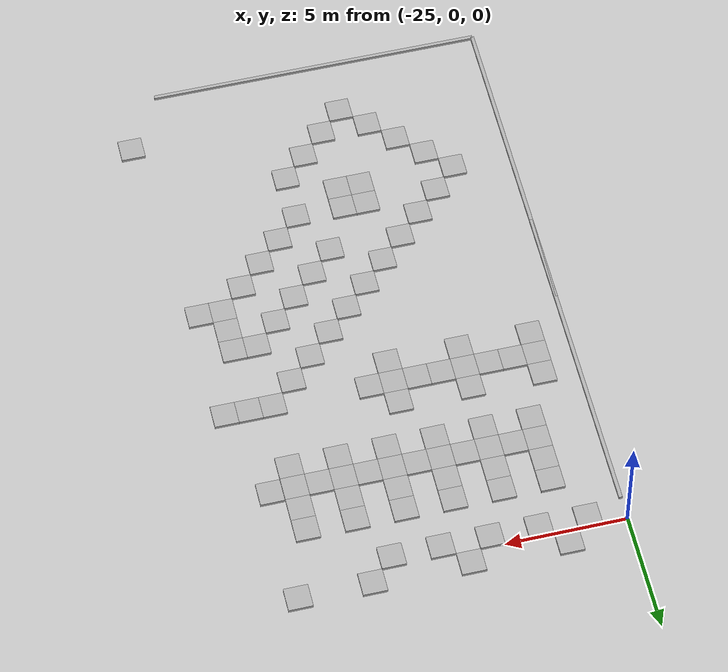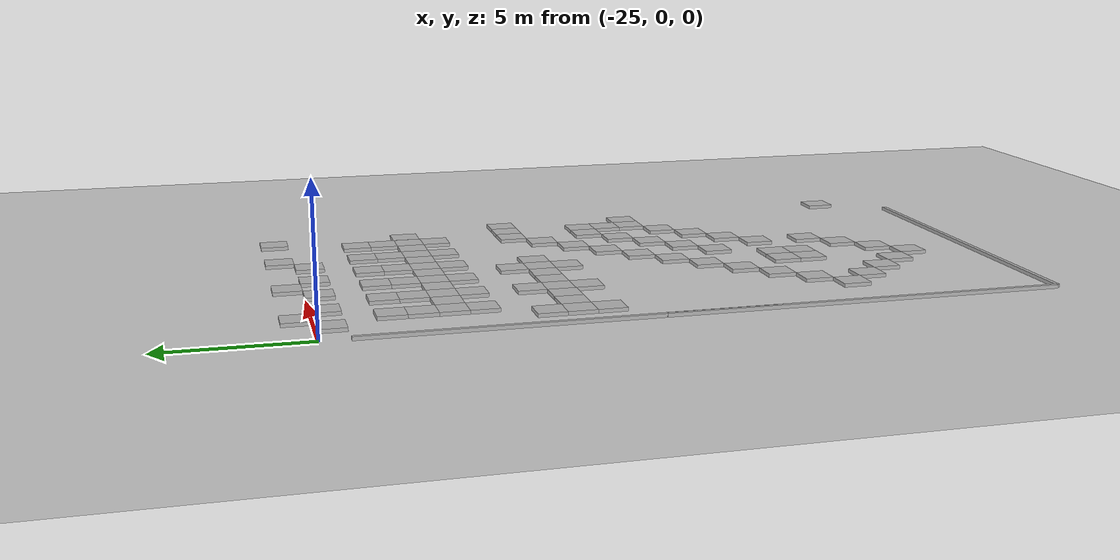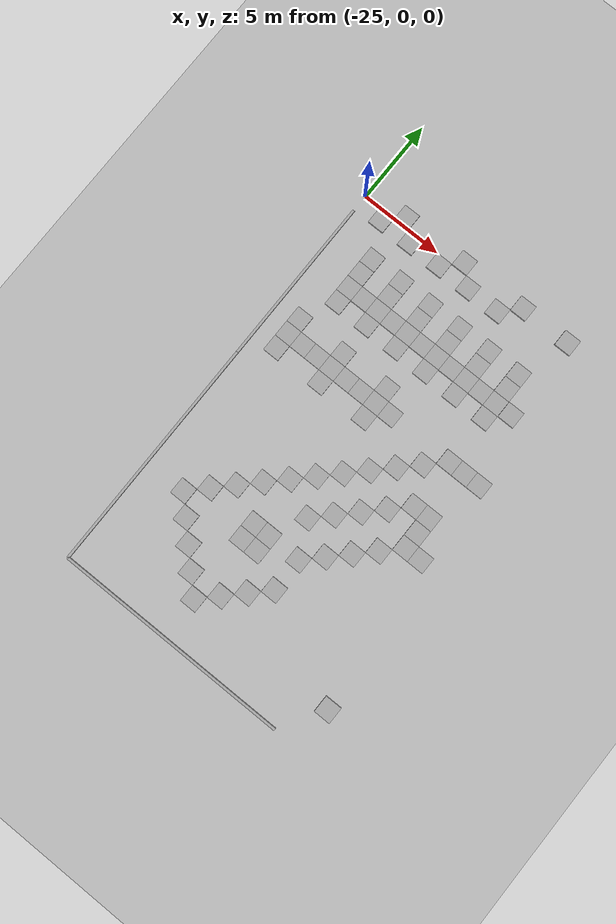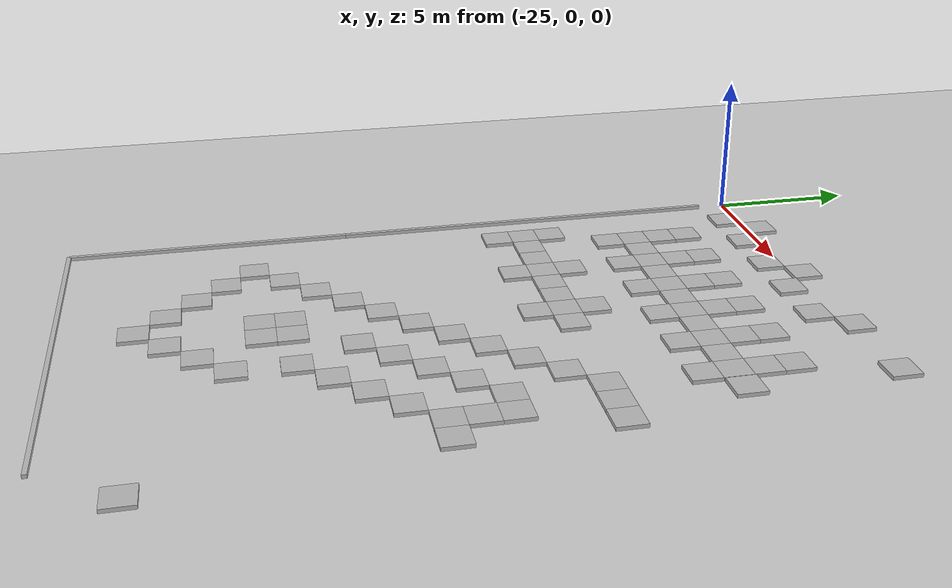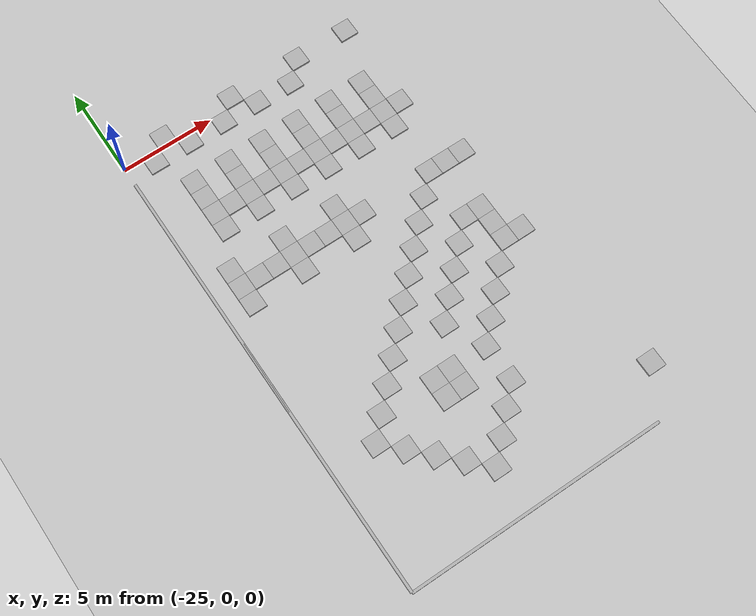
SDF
<sdf version="1.7">
 <world name="default">
  <model name="ground_plane">
   <static>1</static>
   <link name="link">
    <collision name="collision">
     <geometry><plane><normal>0 0 1</normal><size>100 100</size></plane></geometry>
     <surface>
      <contact><collide_bitmask>65535</collide_bitmask></contact>
      <friction><ode><mu>100</mu><mu2>50</mu2></ode></friction>
     </surface>
    </collision>
    <visual name="visual">
     <cast_shadows>0</cast_shadows>
     <geometry><plane><normal>0 0 1</normal><size>100 100</size></plane></geometry>
     <material>
      <script><uri>file://media/materials/scripts/gazebo.material</uri><name>Gazebo/Grey</name></script>
     </material>
    </visual>
   </link>
  </model>
  <model name="concrete_cube_1m_109">
   <static>1</static>
   <link name="link">
    <collision name="concrete_cube_1m">
     <pose>-0 0 0.3 0 -0 0</pose>
     <geometry><box><size>1 1 0.6</size></box></geometry>
    </collision>
    <visual name="concrete_cube_1m_visual">
     <geometry><mesh><uri>model://concrete_cube_1m/meshes/concrete_cube_1m.dae</uri></mesh></geometry>
    </visual>
   </link>
   <pose>-13.5 -12.5 0 0 -0 0</pose>
  </model>
  <model name="concrete_cube_1m_110">
   <static>1</static>
   <link name="link">
    <collision name="concrete_cube_1m">
     <pose>-0 0 0.3 0 -0 0</pose>
     <geometry><box><size>1 1 0.6</size></box></geometry>
    </collision>
    <visual name="concrete_cube_1m_visual">
     <geometry><mesh><uri>model://concrete_cube_1m/meshes/concrete_cube_1m.dae</uri></mesh></geometry>
    </visual>
   </link>
   <pose>-14.5 0.5 0 0 -0 0</pose>
  </model>
  <model name="concrete_cube_1m_186">
   <static>1</static>
   <link name="link">
    <collision name="concrete_cube_1m">
     <pose>-0 0 0.3 0 -0 0</pose>
     <geometry><box><size>1 1 0.6</size></box></geometry>
    </collision>
    <visual name="concrete_cube_1m_visual">
     <geometry><mesh><uri>model://concrete_cube_1m/meshes/concrete_cube_1m.dae</uri></mesh></geometry>
    </visual>
   </link>
   <pose>-10.5 -8.5 0 0 -0 0</pose>
  </model>
  <model name="concrete_cube_1m_187">
   <static>1</static>
   <link name="link">
    <collision name="concrete_cube_1m">
     <pose>-0 0 0.3 0 -0 0</pose>
     <geometry><box><size>1 1 0.6</size></box></geometry>
    </collision>
    <visual name="concrete_cube_1m_visual">
     <geometry><mesh><uri>model://concrete_cube_1m/meshes/concrete_cube_1m.dae</uri></mesh></geometry>
    </visual>
   </link>
   <pose>-11.5 -8.5 0 0 -0 0</pose>
  </model>
  <model name="concrete_cube_1m_188">
   <static>1</static>
   <link name="link">
    <collision name="concrete_cube_1m">
     <pose>-0 0 0.3 0 -0 0</pose>
     <geometry><box><size>1 1 0.6</size></box></geometry>
    </collision>
    <visual name="concrete_cube_1m_visual">
     <geometry><mesh><uri>model://concrete_cube_1m/meshes/concrete_cube_1m.dae</uri></mesh></geometry>
    </visual>
   </link>
   <pose>-12.5 -8.5 0 0 -0 0</pose>
  </model>
  <model name="concrete_cube_1m_189">
   <static>1</static>
   <link name="link">
    <collision name="concrete_cube_1m">
     <pose>-0 0 0.3 0 -0 0</pose>
     <geometry><box><size>1 1 0.6</size></box></geometry>
    </collision>
    <visual name="concrete_cube_1m_visual">
     <geometry><mesh><uri>model://concrete_cube_1m/meshes/concrete_cube_1m.dae</uri></mesh></geometry>
    </visual>
   </link>
   <pose>-12.5 -5.5 0 0 -0 0</pose>
  </model>
  <model name="concrete_cube_1m_190">
   <static>1</static>
   <link name="link">
    <collision name="concrete_cube_1m">
     <pose>-0 0 0.3 0 -0 0</pose>
     <geometry><box><size>1 1 0.6</size></box></geometry>
    </collision>
    <visual name="concrete_cube_1m_visual">
     <geometry><mesh><uri>model://concrete_cube_1m/meshes/concrete_cube_1m.dae</uri></mesh></geometry>
    </visual>
   </link>
   <pose>-12.5 -4.5 0 0 -0 0</pose>
  </model>
  <model name="concrete_cube_1m_191">
   <static>1</static>
   <link name="link">
    <collision name="concrete_cube_1m">
     <pose>-0 0 0.3 0 -0 0</pose>
     <geometry><box><size>1 1 0.6</size></box></geometry>
    </collision>
    <visual name="concrete_cube_1m_visual">
     <geometry><mesh><uri>model://concrete_cube_1m/meshes/concrete_cube_1m.dae</uri></mesh></geometry>
    </visual>
   </link>
   <pose>-12.5 -3.5 0 0 -0 0</pose>
  </model>
  <model name="concrete_cube_1m_195">
   <static>1</static>
   <link name="link">
    <collision name="concrete_cube_1m">
     <pose>-0 0 0.3 0 -0 0</pose>
     <geometry><box><size>1 1 0.6</size></box></geometry>
    </collision>
    <visual name="concrete_cube_1m_visual">
     <geometry><mesh><uri>model://concrete_cube_1m/meshes/concrete_cube_1m.dae</uri></mesh></geometry>
    </visual>
   </link>
   <pose>-10.5 -13.5 0 0 -0 0</pose>
  </model>
  <model name="concrete_cube_1m_203">
   <static>1</static>
   <link name="link">
    <collision name="concrete_cube_1m">
     <pose>-0 0 0.3 0 -0 0</pose>
     <geometry><box><size>1 1 0.6</size></box></geometry>
    </collision>
    <visual name="concrete_cube_1m_visual">
     <geometry><mesh><uri>model://concrete_cube_1m/meshes/concrete_cube_1m.dae</uri></mesh></geometry>
    </visual>
   </link>
   <pose>-11.5 -13.5 0 0 -0 0</pose>
  </model>
  <model name="concrete_cube_1m_204">
   <static>1</static>
   <link name="link">
    <collision name="concrete_cube_1m">
     <pose>-0 0 0.3 0 -0 0</pose>
     <geometry><box><size>1 1 0.6</size></box></geometry>
    </collision>
    <visual name="concrete_cube_1m_visual">
     <geometry><mesh><uri>model://concrete_cube_1m/meshes/concrete_cube_1m.dae</uri></mesh></geometry>
    </visual>
   </link>
   <pose>-11.5 -12.5 0 0 -0 0</pose>
  </model>
  <model name="concrete_cube_1m_205">
   <static>1</static>
   <link name="link">
    <collision name="concrete_cube_1m">
     <pose>-0 0 0.3 0 -0 0</pose>
     <geometry><box><size>1 1 0.6</size></box></geometry>
    </collision>
    <visual name="concrete_cube_1m_visual">
     <geometry><mesh><uri>model://concrete_cube_1m/meshes/concrete_cube_1m.dae</uri></mesh></geometry>
    </visual>
   </link>
   <pose>-11.5 -11.5 0 0 -0 0</pose>
  </model>
  <model name="concrete_cube_1m_206">
   <static>1</static>
   <link name="link">
    <collision name="concrete_cube_1m">
     <pose>-0 0 0.3 0 -0 0</pose>
     <geometry><box><size>1 1 0.6</size></box></geometry>
    </collision>
    <visual name="concrete_cube_1m_visual">
     <geometry><mesh><uri>model://concrete_cube_1m/meshes/concrete_cube_1m.dae</uri></mesh></geometry>
    </visual>
   </link>
   <pose>-12.5 -11.5 0 0 -0 0</pose>
  </model>
  <model name="concrete_cube_1m_208">
   <static>1</static>
   <link name="link">
    <collision name="concrete_cube_1m">
     <pose>-0 0 0.3 0 -0 0</pose>
     <geometry><box><size>1 1 0.6</size></box></geometry>
    </collision>
    <visual name="concrete_cube_1m_visual">
     <geometry><mesh><uri>model://concrete_cube_1m/meshes/concrete_cube_1m.dae</uri></mesh></geometry>
    </visual>
   </link>
   <pose>-11.4847 -4.47764 0 0 -0 0</pose>
  </model>
  <model name="concrete_cube_1m_209">
   <static>1</static>
   <link name="link">
    <collision name="concrete_cube_1m">
     <pose>-0 0 0.3 0 -0 0</pose>
     <geometry><box><size>1 1 0.6</size></box></geometry>
    </collision>
    <visual name="concrete_cube_1m_visual">
     <geometry><mesh><uri>model://concrete_cube_1m/meshes/concrete_cube_1m.dae</uri></mesh></geometry>
    </visual>
   </link>
   <pose>-13.5 -4.5 0 0 -0 0</pose>
  </model>
  <model name="concrete_cube_1m_210">
   <static>1</static>
   <link name="link">
    <collision name="concrete_cube_1m">
     <pose>-0 0 0.3 0 -0 0</pose>
     <geometry><box><size>1 1 0.6</size></box></geometry>
    </collision>
    <visual name="concrete_cube_1m_visual">
     <geometry><mesh><uri>model://concrete_cube_1m/meshes/concrete_cube_1m.dae</uri></mesh></geometry>
    </visual>
   </link>
   <pose>-11.5 0.5 0 0 -0 0</pose>
  </model>
  <model name="concrete_barrier_14m_9">
   <static>1</static>
   <link name="link">
    <collision name="concrete_barrier_14m_01">
     <pose>-0 0 0.3 0 -0 0</pose>
     <geometry><box><size>14 0.15 0.6</size></box></geometry>
    </collision>
    <visual name="concrete_barrier_14m_visual">
     <geometry><mesh><uri>model://concrete_barrier_14m/meshes/concrete_barrier_14m.dae</uri></mesh></geometry>
    </visual>
   </link>
   <pose>-25 -8 0 0 -0 0</pose>
  </model>
  <model name="concrete_cube_1m_345">
   <static>1</static>
   <link name="link">
    <collision name="concrete_cube_1m">
     <pose>-0 0 0.3 0 -0 0</pose>
     <geometry><box><size>1 1 0.6</size></box></geometry>
    </collision>
    <visual name="concrete_cube_1m_visual">
     <geometry><mesh><uri>model://concrete_cube_1m/meshes/concrete_cube_1m.dae</uri></mesh></geometry>
    </visual>
   </link>
   <pose>-18.5 0.5 0 0 -0 0</pose>
  </model>
  <model name="concrete_cube_1m_349">
   <static>1</static>
   <link name="link">
    <collision name="concrete_cube_1m">
     <pose>-0 0 0.3 0 -0 0</pose>
     <geometry><box><size>1 1 0.6</size></box></geometry>
    </collision>
    <visual name="concrete_cube_1m_visual">
     <geometry><mesh><uri>model://concrete_cube_1m/meshes/concrete_cube_1m.dae</uri></mesh></geometry>
    </visual>
   </link>
   <pose>-14.5 -4.5 0 0 -0 0</pose>
  </model>
  <model name="concrete_cube_1m_350">
   <static>1</static>
   <link name="link">
    <collision name="concrete_cube_1m">
     <pose>-0 0 0.3 0 -0 0</pose>
     <geometry><box><size>1 1 0.6</size></box></geometry>
    </collision>
    <visual name="concrete_cube_1m_visual">
     <geometry><mesh><uri>model://concrete_cube_1m/meshes/concrete_cube_1m.dae</uri></mesh></geometry>
    </visual>
   </link>
   <pose>-14.5 -3.5 0 0 -0 0</pose>
  </model>
  <model name="concrete_cube_1m_351">
   <static>1</static>
   <link name="link">
    <collision name="concrete_cube_1m">
     <pose>-0 0 0.3 0 -0 0</pose>
     <geometry><box><size>1 1 0.6</size></box></geometry>
    </collision>
    <visual name="concrete_cube_1m_visual">
     <geometry><mesh><uri>model://concrete_cube_1m/meshes/concrete_cube_1m.dae</uri></mesh></geometry>
    </visual>
   </link>
   <pose>-14.5 -5.5 0 0 -0 0</pose>
  </model>
  <model name="concrete_cube_1m_352">
   <static>1</static>
   <link name="link">
    <collision name="concrete_cube_1m">
     <pose>-0 0 0.3 0 -0 0</pose>
     <geometry><box><size>1 1 0.6</size></box></geometry>
    </collision>
    <visual name="concrete_cube_1m_visual">
     <geometry><mesh><uri>model://concrete_cube_1m/meshes/concrete_cube_1m.dae</uri></mesh></geometry>
    </visual>
   </link>
   <pose>-15.5 -4.5 0 0 -0 0</pose>
  </model>
  <model name="concrete_cube_1m_353">
   <static>1</static>
   <link name="link">
    <collision name="concrete_cube_1m">
     <pose>-0 0 0.3 0 -0 0</pose>
     <geometry><box><size>1 1 0.6</size></box></geometry>
    </collision>
    <visual name="concrete_cube_1m_visual">
     <geometry><mesh><uri>model://concrete_cube_1m/meshes/concrete_cube_1m.dae</uri></mesh></geometry>
    </visual>
   </link>
   <pose>-16.5 -4.5 0 0 -0 0</pose>
  </model>
  <model name="concrete_cube_1m_354">
   <static>1</static>
   <link name="link">
    <collision name="concrete_cube_1m">
     <pose>-0 0 0.3 0 -0 0</pose>
     <geometry><box><size>1 1 0.6</size></box></geometry>
    </collision>
    <visual name="concrete_cube_1m_visual">
     <geometry><mesh><uri>model://concrete_cube_1m/meshes/concrete_cube_1m.dae</uri></mesh></geometry>
    </visual>
   </link>
   <pose>-16.5 -3.5 0 0 -0 0</pose>
  </model>
  <model name="concrete_cube_1m_355">
   <static>1</static>
   <link name="link">
    <collision name="concrete_cube_1m">
     <pose>-0 0 0.3 0 -0 0</pose>
     <geometry><box><size>1 1 0.6</size></box></geometry>
    </collision>
    <visual name="concrete_cube_1m_visual">
     <geometry><mesh><uri>model://concrete_cube_1m/meshes/concrete_cube_1m.dae</uri></mesh></geometry>
    </visual>
   </link>
   <pose>-16.5 -5.5 0 0 -0 0</pose>
  </model>
  <model name="concrete_cube_1m_356">
   <static>1</static>
   <link name="link">
    <collision name="concrete_cube_1m">
     <pose>-0 0 0.3 0 -0 0</pose>
     <geometry><box><size>1 1 0.6</size></box></geometry>
    </collision>
    <visual name="concrete_cube_1m_visual">
     <geometry><mesh><uri>model://concrete_cube_1m/meshes/concrete_cube_1m.dae</uri></mesh></geometry>
    </visual>
   </link>
   <pose>-17.5 -4.5 0 0 -0 0</pose>
  </model>
  <model name="concrete_cube_1m_357">
   <static>1</static>
   <link name="link">
    <collision name="concrete_cube_1m">
     <pose>-0 0 0.3 0 -0 0</pose>
     <geometry><box><size>1 1 0.6</size></box></geometry>
    </collision>
    <visual name="concrete_cube_1m_visual">
     <geometry><mesh><uri>model://concrete_cube_1m/meshes/concrete_cube_1m.dae</uri></mesh></geometry>
    </visual>
   </link>
   <pose>-18.5 -4.5 0 0 -0 0</pose>
  </model>
  <model name="concrete_cube_1m_358">
   <static>1</static>
   <link name="link">
    <collision name="concrete_cube_1m">
     <pose>-0 0 0.3 0 -0 0</pose>
     <geometry><box><size>1 1 0.6</size></box></geometry>
    </collision>
    <visual name="concrete_cube_1m_visual">
     <geometry><mesh><uri>model://concrete_cube_1m/meshes/concrete_cube_1m.dae</uri></mesh></geometry>
    </visual>
   </link>
   <pose>-18.5 -3.5 0 0 -0 0</pose>
  </model>
  <model name="concrete_cube_1m_359">
   <static>1</static>
   <link name="link">
    <collision name="concrete_cube_1m">
     <pose>-0 0 0.3 0 -0 0</pose>
     <geometry><box><size>1 1 0.6</size></box></geometry>
    </collision>
    <visual name="concrete_cube_1m_visual">
     <geometry><mesh><uri>model://concrete_cube_1m/meshes/concrete_cube_1m.dae</uri></mesh></geometry>
    </visual>
   </link>
   <pose>-18.5 -5.5 0 0 -0 0</pose>
  </model>
  <model name="concrete_cube_1m_360">
   <static>1</static>
   <link name="link">
    <collision name="concrete_cube_1m">
     <pose>-0 0 0.3 0 -0 0</pose>
     <geometry><box><size>1 1 0.6</size></box></geometry>
    </collision>
    <visual name="concrete_cube_1m_visual">
     <geometry><mesh><uri>model://concrete_cube_1m/meshes/concrete_cube_1m.dae</uri></mesh></geometry>
    </visual>
   </link>
   <pose>-13.5 -9.5 0 0 -0 0</pose>
  </model>
  <model name="concrete_cube_1m_361">
   <static>1</static>
   <link name="link">
    <collision name="concrete_cube_1m">
     <pose>-0 0 0.3 0 -0 0</pose>
     <geometry><box><size>1 1 0.6</size></box></geometry>
    </collision>
    <visual name="concrete_cube_1m_visual">
     <geometry><mesh><uri>model://concrete_cube_1m/meshes/concrete_cube_1m.dae</uri></mesh></geometry>
    </visual>
   </link>
   <pose>-14.5 -10.5 0 0 -0 0</pose>
  </model>
  <model name="concrete_cube_1m_362">
   <static>1</static>
   <link name="link">
    <collision name="concrete_cube_1m">
     <pose>-0 0 0.3 0 -0 0</pose>
     <geometry><box><size>1 1 0.6</size></box></geometry>
    </collision>
    <visual name="concrete_cube_1m_visual">
     <geometry><mesh><uri>model://concrete_cube_1m/meshes/concrete_cube_1m.dae</uri></mesh></geometry>
    </visual>
   </link>
   <pose>-15.5 -11.5 0 0 -0 0</pose>
  </model>
  <model name="concrete_cube_1m_363">
   <static>1</static>
   <link name="link">
    <collision name="concrete_cube_1m">
     <pose>-0 0 0.3 0 -0 0</pose>
     <geometry><box><size>1 1 0.6</size></box></geometry>
    </collision>
    <visual name="concrete_cube_1m_visual">
     <geometry><mesh><uri>model://concrete_cube_1m/meshes/concrete_cube_1m.dae</uri></mesh></geometry>
    </visual>
   </link>
   <pose>-16.5 -12.5 0 0 -0 0</pose>
  </model>
  <model name="concrete_cube_1m_364">
   <static>1</static>
   <link name="link">
    <collision name="concrete_cube_1m">
     <pose>-0 0 0.3 0 -0 0</pose>
     <geometry><box><size>1 1 0.6</size></box></geometry>
    </collision>
    <visual name="concrete_cube_1m_visual">
     <geometry><mesh><uri>model://concrete_cube_1m/meshes/concrete_cube_1m.dae</uri></mesh></geometry>
    </visual>
   </link>
   <pose>-17.5 -13.5 0 0 -0 0</pose>
  </model>
  <model name="concrete_cube_1m_365">
   <static>1</static>
   <link name="link">
    <collision name="concrete_cube_1m">
     <pose>-0 0 0.3 0 -0 0</pose>
     <geometry><box><size>1 1 0.6</size></box></geometry>
    </collision>
    <visual name="concrete_cube_1m_visual">
     <geometry><mesh><uri>model://concrete_cube_1m/meshes/concrete_cube_1m.dae</uri></mesh></geometry>
    </visual>
   </link>
   <pose>-18.5 -8.5 0 0 -0 0</pose>
  </model>
  <model name="concrete_cube_1m_366">
   <static>1</static>
   <link name="link">
    <collision name="concrete_cube_1m">
     <pose>-0 0 0.3 0 -0 0</pose>
     <geometry><box><size>1 1 0.6</size></box></geometry>
    </collision>
    <visual name="concrete_cube_1m_visual">
     <geometry><mesh><uri>model://concrete_cube_1m/meshes/concrete_cube_1m.dae</uri></mesh></geometry>
    </visual>
   </link>
   <pose>-17.5 -8.5 0 0 -0 0</pose>
  </model>
  <model name="concrete_cube_1m_367">
   <static>1</static>
   <link name="link">
    <collision name="concrete_cube_1m">
     <pose>-0 0 0.3 0 -0 0</pose>
     <geometry><box><size>1 1 0.6</size></box></geometry>
    </collision>
    <visual name="concrete_cube_1m_visual">
     <geometry><mesh><uri>model://concrete_cube_1m/meshes/concrete_cube_1m.dae</uri></mesh></geometry>
    </visual>
   </link>
   <pose>-17.5 -7.5 0 0 -0 0</pose>
  </model>
  <model name="concrete_cube_1m_368">
   <static>1</static>
   <link name="link">
    <collision name="concrete_cube_1m">
     <pose>-0 0 0.3 0 -0 0</pose>
     <geometry><box><size>1 1 0.6</size></box></geometry>
    </collision>
    <visual name="concrete_cube_1m_visual">
     <geometry><mesh><uri>model://concrete_cube_1m/meshes/concrete_cube_1m.dae</uri></mesh></geometry>
    </visual>
   </link>
   <pose>-16.5 -8.5 0 0 -0 0</pose>
  </model>
  <model name="concrete_cube_1m_369">
   <static>1</static>
   <link name="link">
    <collision name="concrete_cube_1m">
     <pose>-0 0 0.3 0 -0 0</pose>
     <geometry><box><size>1 1 0.6</size></box></geometry>
    </collision>
    <visual name="concrete_cube_1m_visual">
     <geometry><mesh><uri>model://concrete_cube_1m/meshes/concrete_cube_1m.dae</uri></mesh></geometry>
    </visual>
   </link>
   <pose>-17.5 -9.5 0 0 -0 0</pose>
  </model>
  <model name="concrete_cube_1m_370">
   <static>1</static>
   <link name="link">
    <collision name="concrete_cube_1m">
     <pose>-0 0 0.3 0 -0 0</pose>
     <geometry><box><size>1 1 0.6</size></box></geometry>
    </collision>
    <visual name="concrete_cube_1m_visual">
     <geometry><mesh><uri>model://concrete_cube_1m/meshes/concrete_cube_1m.dae</uri></mesh></geometry>
    </visual>
   </link>
   <pose>-14.5 -13.5 0 0 -0 0</pose>
  </model>
  <model name="concrete_cube_1m_371">
   <static>1</static>
   <link name="link">
    <collision name="concrete_cube_1m">
     <pose>-0 0 0.3 0 -0 0</pose>
     <geometry><box><size>1 1 0.6</size></box></geometry>
    </collision>
    <visual name="concrete_cube_1m_visual">
     <geometry><mesh><uri>model://concrete_cube_1m/meshes/concrete_cube_1m.dae</uri></mesh></geometry>
    </visual>
   </link>
   <pose>-15.5 -14.5 0 0 -0 0</pose>
  </model>
  <model name="concrete_cube_1m_372">
   <static>1</static>
   <link name="link">
    <collision name="concrete_cube_1m">
     <pose>-0 0 0.3 0 -0 0</pose>
     <geometry><box><size>1 1 0.6</size></box></geometry>
    </collision>
    <visual name="concrete_cube_1m_visual">
     <geometry><mesh><uri>model://concrete_cube_1m/meshes/concrete_cube_1m.dae</uri></mesh></geometry>
    </visual>
   </link>
   <pose>-16.5 -15.5 0 0 -0 0</pose>
  </model>
  <model name="concrete_cube_1m_374">
   <static>1</static>
   <link name="link">
    <collision name="concrete_cube_1m">
     <pose>-0 0 0.3 0 -0 0</pose>
     <geometry><box><size>1 1 0.6</size></box></geometry>
    </collision>
    <visual name="concrete_cube_1m_visual">
     <geometry><mesh><uri>model://concrete_cube_1m/meshes/concrete_cube_1m.dae</uri></mesh></geometry>
    </visual>
   </link>
   <pose>-15.5 -0.5 0 0 -0 0</pose>
  </model>
  <model name="concrete_cube_1m_375">
   <static>1</static>
   <link name="link">
    <collision name="concrete_cube_1m">
     <pose>-0 0 0.3 0 -0 0</pose>
     <geometry><box><size>1 1 0.6</size></box></geometry>
    </collision>
    <visual name="concrete_cube_1m_visual">
     <geometry><mesh><uri>model://concrete_cube_1m/meshes/concrete_cube_1m.dae</uri></mesh></geometry>
    </visual>
   </link>
   <pose>-17.5 -0.5 0 0 -0 0</pose>
  </model>
  <model name="concrete_cube_1m_380">
   <static>1</static>
   <link name="link">
    <collision name="concrete_cube_1m">
     <pose>-0 0 0.3 0 -0 0</pose>
     <geometry><box><size>1 1 0.6</size></box></geometry>
    </collision>
    <visual name="concrete_cube_1m_visual">
     <geometry><mesh><uri>model://concrete_cube_1m/meshes/concrete_cube_1m.dae</uri></mesh></geometry>
    </visual>
   </link>
   <pose>-12.5 -2.5 0 0 -0 0</pose>
  </model>
  <model name="concrete_cube_1m_381">
   <static>1</static>
   <link name="link">
    <collision name="concrete_cube_1m">
     <pose>-0 0 0.3 0 -0 0</pose>
     <geometry><box><size>1 1 0.6</size></box></geometry>
    </collision>
    <visual name="concrete_cube_1m_visual">
     <geometry><mesh><uri>model://concrete_cube_1m/meshes/concrete_cube_1m.dae</uri></mesh></geometry>
    </visual>
   </link>
   <pose>-14.5 -2.5 0 0 -0 0</pose>
  </model>
  <model name="concrete_cube_1m_382">
   <static>1</static>
   <link name="link">
    <collision name="concrete_cube_1m">
     <pose>-0 0 0.3 0 -0 0</pose>
     <geometry><box><size>1 1 0.6</size></box></geometry>
    </collision>
    <visual name="concrete_cube_1m_visual">
     <geometry><mesh><uri>model://concrete_cube_1m/meshes/concrete_cube_1m.dae</uri></mesh></geometry>
    </visual>
   </link>
   <pose>-16.5 -2.5 0 0 -0 0</pose>
  </model>
  <model name="concrete_cube_1m_383">
   <static>1</static>
   <link name="link">
    <collision name="concrete_cube_1m">
     <pose>-0 0 0.3 0 -0 0</pose>
     <geometry><box><size>1 1 0.6</size></box></geometry>
    </collision>
    <visual name="concrete_cube_1m_visual">
     <geometry><mesh><uri>model://concrete_cube_1m/meshes/concrete_cube_1m.dae</uri></mesh></geometry>
    </visual>
   </link>
   <pose>-18.5 -2.5 0 0 -0 0</pose>
  </model>
  <model name="concrete_cube_1m_384">
   <static>1</static>
   <link name="link">
    <collision name="concrete_cube_1m">
     <pose>-0 0 0.3 0 -0 0</pose>
     <geometry><box><size>1 1 0.6</size></box></geometry>
    </collision>
    <visual name="concrete_cube_1m_visual">
     <geometry><mesh><uri>model://concrete_cube_1m/meshes/concrete_cube_1m.dae</uri></mesh></geometry>
    </visual>
   </link>
   <pose>-12.5 -14.5 0 0 -0 0</pose>
  </model>
  <model name="concrete_cube_1m_385">
   <static>1</static>
   <link name="link">
    <collision name="concrete_cube_1m">
     <pose>-0 0 0.3 0 -0 0</pose>
     <geometry><box><size>1 1 0.6</size></box></geometry>
    </collision>
    <visual name="concrete_cube_1m_visual">
     <geometry><mesh><uri>model://concrete_cube_1m/meshes/concrete_cube_1m.dae</uri></mesh></geometry>
    </visual>
   </link>
   <pose>-13.5 -15.5 0 0 -0 0</pose>
  </model>
  <model name="concrete_cube_1m_386">
   <static>1</static>
   <link name="link">
    <collision name="concrete_cube_1m">
     <pose>-0 0 0.3 0 -0 0</pose>
     <geometry><box><size>1 1 0.6</size></box></geometry>
    </collision>
    <visual name="concrete_cube_1m_visual">
     <geometry><mesh><uri>model://concrete_cube_1m/meshes/concrete_cube_1m.dae</uri></mesh></geometry>
    </visual>
   </link>
   <pose>-14.5 -16.5 0 0 -0 0</pose>
  </model>
  <model name="concrete_cube_1m_387">
   <static>1</static>
   <link name="link">
    <collision name="concrete_cube_1m">
     <pose>-0 0 0.3 0 -0 0</pose>
     <geometry><box><size>1 1 0.6</size></box></geometry>
    </collision>
    <visual name="concrete_cube_1m_visual">
     <geometry><mesh><uri>model://concrete_cube_1m/meshes/concrete_cube_1m.dae</uri></mesh></geometry>
    </visual>
   </link>
   <pose>-15.5 -17.5 0 0 -0 0</pose>
  </model>
  <model name="concrete_cube_1m_373">
   <static>1</static>
   <link name="link">
    <collision name="concrete_cube_1m">
     <pose>-0 0 0.3 0 -0 0</pose>
     <geometry><box><size>1 1 0.6</size></box></geometry>
    </collision>
    <visual name="concrete_cube_1m_visual">
     <geometry><mesh><uri>model://concrete_cube_1m/meshes/concrete_cube_1m.dae</uri></mesh></geometry>
    </visual>
   </link>
   <pose>-17.5 -18.5 0 0 -0 0</pose>
  </model>
  <model name="concrete_cube_1m_388">
   <static>1</static>
   <link name="link">
    <collision name="concrete_cube_1m">
     <pose>-0 0 0.3 0 -0 0</pose>
     <geometry><box><size>1 1 0.6</size></box></geometry>
    </collision>
    <visual name="concrete_cube_1m_visual">
     <geometry><mesh><uri>model://concrete_cube_1m/meshes/concrete_cube_1m.dae</uri></mesh></geometry>
    </visual>
   </link>
   <pose>-17.5 -17.5 0 0 -0 0</pose>
  </model>
  <model name="concrete_cube_1m_389">
   <static>1</static>
   <link name="link">
    <collision name="concrete_cube_1m">
     <pose>-0 0 0.3 0 -0 0</pose>
     <geometry><box><size>1 1 0.6</size></box></geometry>
    </collision>
    <visual name="concrete_cube_1m_visual">
     <geometry><mesh><uri>model://concrete_cube_1m/meshes/concrete_cube_1m.dae</uri></mesh></geometry>
    </visual>
   </link>
   <pose>-18.5 -18.5 0 0 -0 0</pose>
  </model>
  <model name="concrete_cube_1m_390">
   <static>1</static>
   <link name="link">
    <collision name="concrete_cube_1m">
     <pose>-0 0 0.3 0 -0 0</pose>
     <geometry><box><size>1 1 0.6</size></box></geometry>
    </collision>
    <visual name="concrete_cube_1m_visual">
     <geometry><mesh><uri>model://concrete_cube_1m/meshes/concrete_cube_1m.dae</uri></mesh></geometry>
    </visual>
   </link>
   <pose>-18.5 -17.5 0 0 -0 0</pose>
  </model>
  <model name="concrete_barrier_14m_1">
   <static>1</static>
   <link name="link">
    <collision name="concrete_barrier_14m_01">
     <pose>-0 0 0.3 0 -0 0</pose>
     <geometry><box><size>14 0.15 0.6</size></box></geometry>
    </collision>
    <visual name="concrete_barrier_14m_visual">
     <geometry><mesh><uri>model://concrete_barrier_14m/meshes/concrete_barrier_14m.dae</uri></mesh></geometry>
    </visual>
   </link>
   <pose>-25 -18 0 0 -0 0</pose>
  </model>
  <model name="concrete_barrier_14m_2">
   <static>1</static>
   <link name="link">
    <collision name="concrete_barrier_14m_01">
     <pose>-0 0 0.3 0 -0 0</pose>
     <geometry><box><size>14 0.15 0.6</size></box></geometry>
    </collision>
    <visual name="concrete_barrier_14m_visual">
     <geometry><mesh><uri>model://concrete_barrier_14m/meshes/concrete_barrier_14m.dae</uri></mesh></geometry>
    </visual>
   </link>
   <pose>-18 -25 0 0 0 -1.56953</pose>
  </model>
  <model name="concrete_cube_1m_492">
   <static>1</static>
   <link name="link">
    <collision name="concrete_cube_1m">
     <pose>-0 0 0.3 0 -0 0</pose>
     <geometry><box><size>1 1 0.6</size></box></geometry>
    </collision>
    <visual name="concrete_cube_1m_visual">
     <geometry><mesh><uri>model://concrete_cube_1m/meshes/concrete_cube_1m.dae</uri></mesh></geometry>
    </visual>
   </link>
   <pose>-19.5 -0.5 0 0 -0 0</pose>
  </model>
  <model name="concrete_cube_1m_494">
   <static>1</static>
   <link name="link">
    <collision name="concrete_cube_1m">
     <pose>-0 0 0.3 0 -0 0</pose>
     <geometry><box><size>1 1 0.6</size></box></geometry>
    </collision>
    <visual name="concrete_cube_1m_visual">
     <geometry><mesh><uri>model://concrete_cube_1m/meshes/concrete_cube_1m.dae</uri></mesh></geometry>
    </visual>
   </link>
   <pose>-22.5 0.5 0 0 -0 0</pose>
  </model>
  <model name="concrete_cube_1m_495">
   <static>1</static>
   <link name="link">
    <collision name="concrete_cube_1m">
     <pose>-0 0 0.3 0 -0 0</pose>
     <geometry><box><size>1 1 0.6</size></box></geometry>
    </collision>
    <visual name="concrete_cube_1m_visual">
     <geometry><mesh><uri>model://concrete_cube_1m/meshes/concrete_cube_1m.dae</uri></mesh></geometry>
    </visual>
   </link>
   <pose>-21.5 -0.5 0 0 -0 0</pose>
  </model>
  <model name="concrete_cube_1m_496">
   <static>1</static>
   <link name="link">
    <collision name="concrete_cube_1m">
     <pose>-0 0 0.3 0 -0 0</pose>
     <geometry><box><size>1 1 0.6</size></box></geometry>
    </collision>
    <visual name="concrete_cube_1m_visual">
     <geometry><mesh><uri>model://concrete_cube_1m/meshes/concrete_cube_1m.dae</uri></mesh></geometry>
    </visual>
   </link>
   <pose>-23.5 -0.5 0 0 -0 0</pose>
  </model>
  <model name="concrete_cube_1m_498">
   <static>1</static>
   <link name="link">
    <collision name="concrete_cube_1m">
     <pose>-0 0 0.3 0 -0 0</pose>
     <geometry><box><size>1 1 0.6</size></box></geometry>
    </collision>
    <visual name="concrete_cube_1m_visual">
     <geometry><mesh><uri>model://concrete_cube_1m/meshes/concrete_cube_1m.dae</uri></mesh></geometry>
    </visual>
   </link>
   <pose>-19.5 -4.5 0 0 -0 0</pose>
  </model>
  <model name="concrete_cube_1m_499">
   <static>1</static>
   <link name="link">
    <collision name="concrete_cube_1m">
     <pose>-0 0 0.3 0 -0 0</pose>
     <geometry><box><size>1 1 0.6</size></box></geometry>
    </collision>
    <visual name="concrete_cube_1m_visual">
     <geometry><mesh><uri>model://concrete_cube_1m/meshes/concrete_cube_1m.dae</uri></mesh></geometry>
    </visual>
   </link>
   <pose>-20.5 -4.5 0 0 -0 0</pose>
  </model>
  <model name="concrete_cube_1m_500">
   <static>1</static>
   <link name="link">
    <collision name="concrete_cube_1m">
     <pose>-0 0 0.3 0 -0 0</pose>
     <geometry><box><size>1 1 0.6</size></box></geometry>
    </collision>
    <visual name="concrete_cube_1m_visual">
     <geometry><mesh><uri>model://concrete_cube_1m/meshes/concrete_cube_1m.dae</uri></mesh></geometry>
    </visual>
   </link>
   <pose>-21.5 -4.5 0 0 -0 0</pose>
  </model>
  <model name="concrete_cube_1m_501">
   <static>1</static>
   <link name="link">
    <collision name="concrete_cube_1m">
     <pose>-0 0 0.3 0 -0 0</pose>
     <geometry><box><size>1 1 0.6</size></box></geometry>
    </collision>
    <visual name="concrete_cube_1m_visual">
     <geometry><mesh><uri>model://concrete_cube_1m/meshes/concrete_cube_1m.dae</uri></mesh></geometry>
    </visual>
   </link>
   <pose>-22.5 -4.5 0 0 -0 0</pose>
  </model>
  <model name="concrete_cube_1m_502">
   <static>1</static>
   <link name="link">
    <collision name="concrete_cube_1m">
     <pose>-0 0 0.3 0 -0 0</pose>
     <geometry><box><size>1 1 0.6</size></box></geometry>
    </collision>
    <visual name="concrete_cube_1m_visual">
     <geometry><mesh><uri>model://concrete_cube_1m/meshes/concrete_cube_1m.dae</uri></mesh></geometry>
    </visual>
   </link>
   <pose>-20.5 -3.5 0 0 -0 0</pose>
  </model>
  <model name="concrete_cube_1m_503">
   <static>1</static>
   <link name="link">
    <collision name="concrete_cube_1m">
     <pose>-0 0 0.3 0 -0 0</pose>
     <geometry><box><size>1 1 0.6</size></box></geometry>
    </collision>
    <visual name="concrete_cube_1m_visual">
     <geometry><mesh><uri>model://concrete_cube_1m/meshes/concrete_cube_1m.dae</uri></mesh></geometry>
    </visual>
   </link>
   <pose>-20.5 -2.5 0 0 -0 0</pose>
  </model>
  <model name="concrete_cube_1m_504">
   <static>1</static>
   <link name="link">
    <collision name="concrete_cube_1m">
     <pose>-0 0 0.3 0 -0 0</pose>
     <geometry><box><size>1 1 0.6</size></box></geometry>
    </collision>
    <visual name="concrete_cube_1m_visual">
     <geometry><mesh><uri>model://concrete_cube_1m/meshes/concrete_cube_1m.dae</uri></mesh></geometry>
    </visual>
   </link>
   <pose>-20.5 -5.5 0 0 -0 0</pose>
  </model>
  <model name="concrete_cube_1m_505">
   <static>1</static>
   <link name="link">
    <collision name="concrete_cube_1m">
     <pose>-0 0 0.3 0 -0 0</pose>
     <geometry><box><size>1 1 0.6</size></box></geometry>
    </collision>
    <visual name="concrete_cube_1m_visual">
     <geometry><mesh><uri>model://concrete_cube_1m/meshes/concrete_cube_1m.dae</uri></mesh></geometry>
    </visual>
   </link>
   <pose>-22.5 -5.5 0 0 -0 0</pose>
  </model>
  <model name="concrete_cube_1m_506">
   <static>1</static>
   <link name="link">
    <collision name="concrete_cube_1m">
     <pose>-0 0 0.3 0 -0 0</pose>
     <geometry><box><size>1 1 0.6</size></box></geometry>
    </collision>
    <visual name="concrete_cube_1m_visual">
     <geometry><mesh><uri>model://concrete_cube_1m/meshes/concrete_cube_1m.dae</uri></mesh></geometry>
    </visual>
   </link>
   <pose>-22.5 -3.5 0 0 -0 0</pose>
  </model>
  <model name="concrete_cube_1m_507">
   <static>1</static>
   <link name="link">
    <collision name="concrete_cube_1m">
     <pose>-0 0 0.3 0 -0 0</pose>
     <geometry><box><size>1 1 0.6</size></box></geometry>
    </collision>
    <visual name="concrete_cube_1m_visual">
     <geometry><mesh><uri>model://concrete_cube_1m/meshes/concrete_cube_1m.dae</uri></mesh></geometry>
    </visual>
   </link>
   <pose>-22.5 -2.5 0 0 -0 0</pose>
  </model>
  <model name="concrete_cube_1m_508">
   <static>1</static>
   <link name="link">
    <collision name="concrete_cube_1m">
     <pose>-0 0 0.3 0 -0 0</pose>
     <geometry><box><size>1 1 0.6</size></box></geometry>
    </collision>
    <visual name="concrete_cube_1m_visual">
     <geometry><mesh><uri>model://concrete_cube_1m/meshes/concrete_cube_1m.dae</uri></mesh></geometry>
    </visual>
   </link>
   <pose>-19.5 -8.5 0 0 -0 0</pose>
  </model>
  <model name="concrete_cube_1m_509">
   <static>1</static>
   <link name="link">
    <collision name="concrete_cube_1m">
     <pose>-0 0 0.3 0 -0 0</pose>
     <geometry><box><size>1 1 0.6</size></box></geometry>
    </collision>
    <visual name="concrete_cube_1m_visual">
     <geometry><mesh><uri>model://concrete_cube_1m/meshes/concrete_cube_1m.dae</uri></mesh></geometry>
    </visual>
   </link>
   <pose>-20.5 -8.5 0 0 -0 0</pose>
  </model>
  <model name="concrete_cube_1m_510">
   <static>1</static>
   <link name="link">
    <collision name="concrete_cube_1m">
     <pose>-0 0 0.3 0 -0 0</pose>
     <geometry><box><size>1 1 0.6</size></box></geometry>
    </collision>
    <visual name="concrete_cube_1m_visual">
     <geometry><mesh><uri>model://concrete_cube_1m/meshes/concrete_cube_1m.dae</uri></mesh></geometry>
    </visual>
   </link>
   <pose>-20.5 -9.5 0 0 -0 0</pose>
  </model>
  <model name="concrete_cube_1m_511">
   <static>1</static>
   <link name="link">
    <collision name="concrete_cube_1m">
     <pose>-0 0 0.3 0 -0 0</pose>
     <geometry><box><size>1 1 0.6</size></box></geometry>
    </collision>
    <visual name="concrete_cube_1m_visual">
     <geometry><mesh><uri>model://concrete_cube_1m/meshes/concrete_cube_1m.dae</uri></mesh></geometry>
    </visual>
   </link>
   <pose>-20.5 -7.5 0 0 -0 0</pose>
  </model>
  <model name="concrete_cube_1m_512">
   <static>1</static>
   <link name="link">
    <collision name="concrete_cube_1m">
     <pose>-0 0 0.3 0 -0 0</pose>
     <geometry><box><size>1 1 0.6</size></box></geometry>
    </collision>
    <visual name="concrete_cube_1m_visual">
     <geometry><mesh><uri>model://concrete_cube_1m/meshes/concrete_cube_1m.dae</uri></mesh></geometry>
    </visual>
   </link>
   <pose>-21.5 -8.5 0 0 -0 0</pose>
  </model>
  <model name="concrete_cube_1m_513">
   <static>1</static>
   <link name="link">
    <collision name="concrete_cube_1m">
     <pose>-0 0 0.3 0 -0 0</pose>
     <geometry><box><size>1 1 0.6</size></box></geometry>
    </collision>
    <visual name="concrete_cube_1m_visual">
     <geometry><mesh><uri>model://concrete_cube_1m/meshes/concrete_cube_1m.dae</uri></mesh></geometry>
    </visual>
   </link>
   <pose>-22.5 -8.5 0 0 -0 0</pose>
  </model>
  <model name="concrete_cube_1m_514">
   <static>1</static>
   <link name="link">
    <collision name="concrete_cube_1m">
     <pose>-0 0 0.3 0 -0 0</pose>
     <geometry><box><size>1 1 0.6</size></box></geometry>
    </collision>
    <visual name="concrete_cube_1m_visual">
     <geometry><mesh><uri>model://concrete_cube_1m/meshes/concrete_cube_1m.dae</uri></mesh></geometry>
    </visual>
   </link>
   <pose>-23.5 -8.5 0 0 -0 0</pose>
  </model>
  <model name="concrete_cube_1m_515">
   <static>1</static>
   <link name="link">
    <collision name="concrete_cube_1m">
     <pose>-0 0 0.3 0 -0 0</pose>
     <geometry><box><size>1 1 0.6</size></box></geometry>
    </collision>
    <visual name="concrete_cube_1m_visual">
     <geometry><mesh><uri>model://concrete_cube_1m/meshes/concrete_cube_1m.dae</uri></mesh></geometry>
    </visual>
   </link>
   <pose>-23.5 -7.5 0 0 -0 0</pose>
  </model>
  <model name="concrete_cube_1m_516">
   <static>1</static>
   <link name="link">
    <collision name="concrete_cube_1m">
     <pose>-0 0 0.3 0 -0 0</pose>
     <geometry><box><size>1 1 0.6</size></box></geometry>
    </collision>
    <visual name="concrete_cube_1m_visual">
     <geometry><mesh><uri>model://concrete_cube_1m/meshes/concrete_cube_1m.dae</uri></mesh></geometry>
    </visual>
   </link>
   <pose>-23.5 -9.5 0 0 -0 0</pose>
  </model>
  <model name="concrete_cube_1m_517">
   <static>1</static>
   <link name="link">
    <collision name="concrete_cube_1m">
     <pose>-0 0 0.3 0 -0 0</pose>
     <geometry><box><size>1 1 0.6</size></box></geometry>
    </collision>
    <visual name="concrete_cube_1m_visual">
     <geometry><mesh><uri>model://concrete_cube_1m/meshes/concrete_cube_1m.dae</uri></mesh></geometry>
    </visual>
   </link>
   <pose>-18.5 -14.5 0 0 -0 0</pose>
  </model>
  <model name="concrete_cube_1m_518">
   <static>1</static>
   <link name="link">
    <collision name="concrete_cube_1m">
     <pose>-0 0 0.3 0 -0 0</pose>
     <geometry><box><size>1 1 0.6</size></box></geometry>
    </collision>
    <visual name="concrete_cube_1m_visual">
     <geometry><mesh><uri>model://concrete_cube_1m/meshes/concrete_cube_1m.dae</uri></mesh></geometry>
    </visual>
   </link>
   <pose>-19.5 -15.5 0 0 -0 0</pose>
  </model>
  <model name="concrete_cube_1m_519">
   <static>1</static>
   <link name="link">
    <collision name="concrete_cube_1m">
     <pose>-0 0 0.3 0 -0 0</pose>
     <geometry><box><size>1 1 0.6</size></box></geometry>
    </collision>
    <visual name="concrete_cube_1m_visual">
     <geometry><mesh><uri>model://concrete_cube_1m/meshes/concrete_cube_1m.dae</uri></mesh></geometry>
    </visual>
   </link>
   <pose>-20.5 -16.5 0 0 -0 0</pose>
  </model>
  <model name="concrete_cube_1m_520">
   <static>1</static>
   <link name="link">
    <collision name="concrete_cube_1m">
     <pose>-0 0 0.3 0 -0 0</pose>
     <geometry><box><size>1 1 0.6</size></box></geometry>
    </collision>
    <visual name="concrete_cube_1m_visual">
     <geometry><mesh><uri>model://concrete_cube_1m/meshes/concrete_cube_1m.dae</uri></mesh></geometry>
    </visual>
   </link>
   <pose>-21.5 -17.5 0 0 -0 0</pose>
  </model>
  <model name="concrete_cube_1m_521">
   <static>1</static>
   <link name="link">
    <collision name="concrete_cube_1m">
     <pose>-0 0 0.3 0 -0 0</pose>
     <geometry><box><size>1 1 0.6</size></box></geometry>
    </collision>
    <visual name="concrete_cube_1m_visual">
     <geometry><mesh><uri>model://concrete_cube_1m/meshes/concrete_cube_1m.dae</uri></mesh></geometry>
    </visual>
   </link>
   <pose>-22.5 -18.5 0 0 -0 0</pose>
  </model>
  <model name="concrete_cube_1m_522">
   <static>1</static>
   <link name="link">
    <collision name="concrete_cube_1m">
     <pose>-0 0 0.3 0 -0 0</pose>
     <geometry><box><size>1 1 0.6</size></box></geometry>
    </collision>
    <visual name="concrete_cube_1m_visual">
     <geometry><mesh><uri>model://concrete_cube_1m/meshes/concrete_cube_1m.dae</uri></mesh></geometry>
    </visual>
   </link>
   <pose>-21.5 -19.5 0 0 -0 0</pose>
  </model>
  <model name="concrete_cube_1m_523">
   <static>1</static>
   <link name="link">
    <collision name="concrete_cube_1m">
     <pose>-0 0 0.3 0 -0 0</pose>
     <geometry><box><size>1 1 0.6</size></box></geometry>
    </collision>
    <visual name="concrete_cube_1m_visual">
     <geometry><mesh><uri>model://concrete_cube_1m/meshes/concrete_cube_1m.dae</uri></mesh></geometry>
    </visual>
   </link>
   <pose>-20.5 -20.5 0 0 -0 0</pose>
  </model>
  <model name="concrete_cube_1m_524">
   <static>1</static>
   <link name="link">
    <collision name="concrete_cube_1m">
     <pose>-0 0 0.3 0 -0 0</pose>
     <geometry><box><size>1 1 0.6</size></box></geometry>
    </collision>
    <visual name="concrete_cube_1m_visual">
     <geometry><mesh><uri>model://concrete_cube_1m/meshes/concrete_cube_1m.dae</uri></mesh></geometry>
    </visual>
   </link>
   <pose>-19.5 -21.5 0 0 -0 0</pose>
  </model>
  <model name="concrete_cube_1m_525">
   <static>1</static>
   <link name="link">
    <collision name="concrete_cube_1m">
     <pose>-0 0 0.3 0 -0 0</pose>
     <geometry><box><size>1 1 0.6</size></box></geometry>
    </collision>
    <visual name="concrete_cube_1m_visual">
     <geometry><mesh><uri>model://concrete_cube_1m/meshes/concrete_cube_1m.dae</uri></mesh></geometry>
    </visual>
   </link>
   <pose>-18.5 -22.5 0 0 -0 0</pose>
  </model>
  <model name="concrete_cube_1m_526">
   <static>1</static>
   <link name="link">
    <collision name="concrete_cube_1m">
     <pose>-0 0 0.3 0 -0 0</pose>
     <geometry><box><size>1 1 0.6</size></box></geometry>
    </collision>
    <visual name="concrete_cube_1m_visual">
     <geometry><mesh><uri>model://concrete_cube_1m/meshes/concrete_cube_1m.dae</uri></mesh></geometry>
    </visual>
   </link>
   <pose>-17.5 -21.5 0 0 -0 0</pose>
  </model>
  <model name="concrete_cube_1m_527">
   <static>1</static>
   <link name="link">
    <collision name="concrete_cube_1m">
     <pose>-0 0 0.3 0 -0 0</pose>
     <geometry><box><size>1 1 0.6</size></box></geometry>
    </collision>
    <visual name="concrete_cube_1m_visual">
     <geometry><mesh><uri>model://concrete_cube_1m/meshes/concrete_cube_1m.dae</uri></mesh></geometry>
    </visual>
   </link>
   <pose>-16.5 -20.5 0 0 -0 0</pose>
  </model>
  <model name="concrete_cube_1m_528">
   <static>1</static>
   <link name="link">
    <collision name="concrete_cube_1m">
     <pose>-0 0 0.3 0 -0 0</pose>
     <geometry><box><size>1 1 0.6</size></box></geometry>
    </collision>
    <visual name="concrete_cube_1m_visual">
     <geometry><mesh><uri>model://concrete_cube_1m/meshes/concrete_cube_1m.dae</uri></mesh></geometry>
    </visual>
   </link>
   <pose>-15.5 -19.5 0 0 -0 0</pose>
  </model>
  <model name="concrete_cube_1m_541">
   <static>1</static>
   <link name="link">
    <collision name="concrete_cube_1m">
     <pose>-0 0 0.3 0 -0 0</pose>
     <geometry><box><size>1 1 0.6</size></box></geometry>
    </collision>
    <visual name="concrete_cube_1m_visual">
     <geometry><mesh><uri>model://concrete_cube_1m/meshes/concrete_cube_1m.dae</uri></mesh></geometry>
    </visual>
   </link>
   <pose>-9.5 -22.5 0 0 -0 0</pose>
  </model>
 </world>
</sdf>
